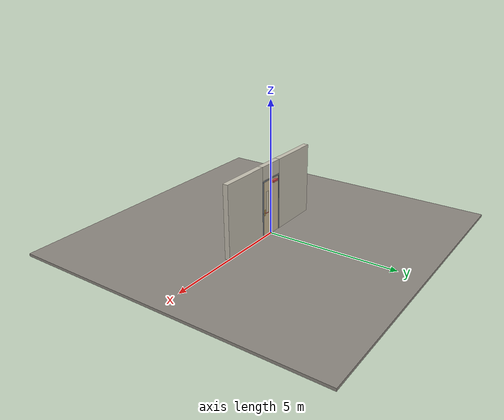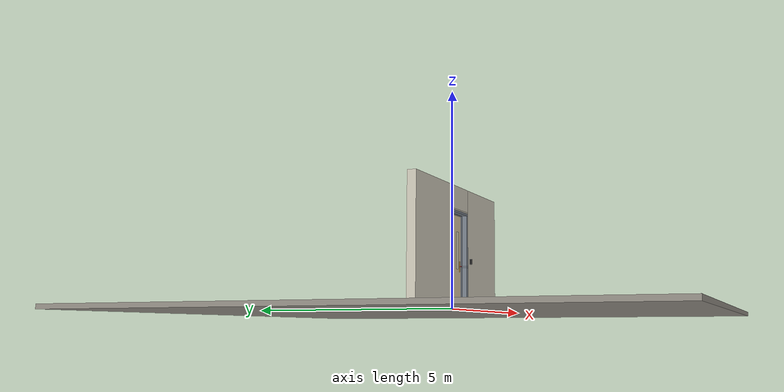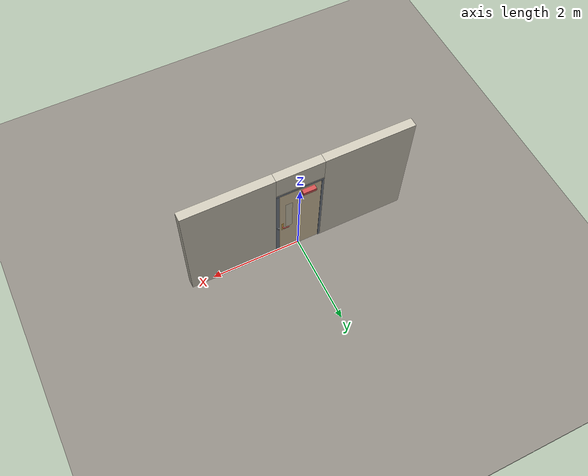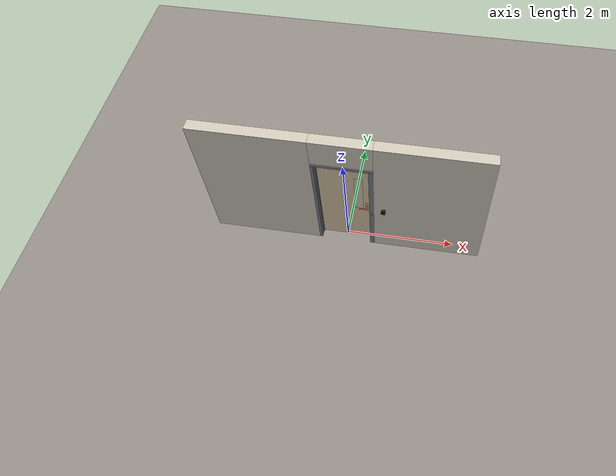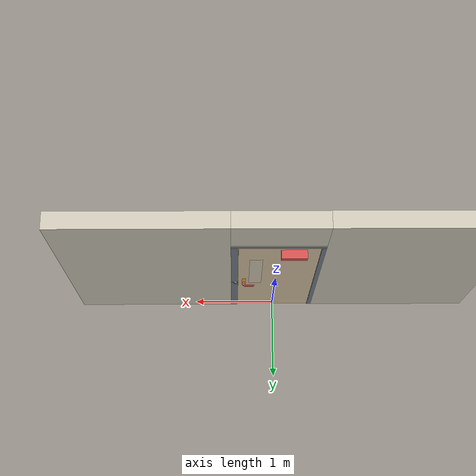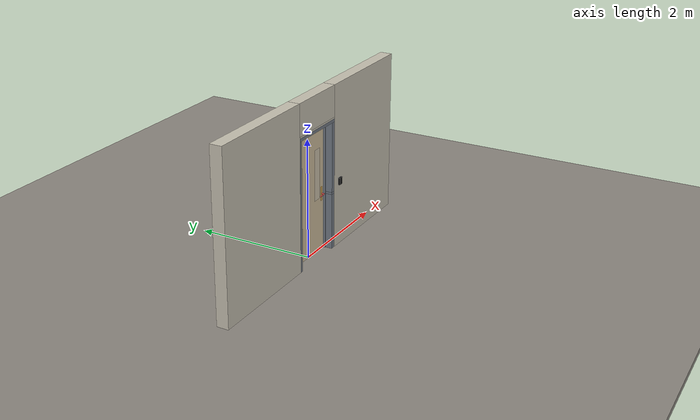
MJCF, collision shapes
<?xml version="1.0" ?>
<mujoco model="db0904_swing_single_simple">
  <compiler angle="radian" meshdir="../../hardware" texturedir="../../textures" autolimits="true" inertiafromgeom="false"/>
  <option timestep="0.002" integrator="implicitfast" cone="elliptic" impratio="10" noslip_iterations="3">
    <flag multiccd="enable"/>
  </option>
  <size memory="16M"/>
  <default>
    <geom condim="4" solref="0.005 1" solimp="0.95 0.99 0.001"/>
    <joint solreflimit="0.005 1" solimplimit="0.95 0.99 0.001"/>
    <tendon solreflimit="0.005 1"/>
    <equality solref="0.002 1"/>
  </default>
  <visual>
    <headlight ambient="0.4 0.4 0.4" diffuse="0.7 0.7 0.7" specular="0.2 0.2 0.2"/>
    <quality shadowsize="4096"/>
    <map znear="0.01" zfar="60"/>
  </visual>
  <asset>
    <mesh name="closer_body_fdc4667657" file="closer_body_fdc4667657.obj"/>
    <mesh name="hinge_e22b26c0c1" file="hinge_e22b26c0c1.obj"/>
    <mesh name="hinge_jamb_e1d088f8dc" file="hinge_jamb_e1d088f8dc.obj"/>
    <mesh name="lever_6fbb1e9593" file="lever_6fbb1e9593.obj"/>
    <material name="mat_floor" rgba="0.55 0.53 0.5 1" specular="0.2" shininess="0.15" reflectance="0"/>
    <material name="mat_wall" rgba="0.78 0.76 0.7 1" specular="0.2" shininess="0.1" reflectance="0"/>
    <material name="mat_leaf" rgba="0.82 0.75 0.62 1" specular="0.2" shininess="0.5" reflectance="0"/>
    <material name="mat_glass" rgba="0.85 0.92 0.95 0.25" specular="0.2" shininess="0.95" reflectance="0.1"/>
    <material name="mat_hinge" rgba="0.65 0.66 0.68 1" specular="0.74" shininess="0.5" reflectance="0.36"/>
    <material name="mat_op_brass" rgba="0.85 0.66 0.3 1" specular="0.8" shininess="0.75" reflectance="0.4"/>
    <material name="mat_trim" rgba="0.85 0.66 0.3 1" specular="0.8" shininess="0.75" reflectance="0.4"/>
    <material name="mat_bolt" rgba="0.85 0.66 0.3 1" specular="0.8" shininess="0.75" reflectance="0.4"/>
    <material name="mat_frame" rgba="0.45 0.48 0.52 1" specular="0.32" shininess="0.6" reflectance="0.08"/>
    <material name="mat_seal" rgba="0.1 0.1 0.1 1" specular="0.2" shininess="0.1" reflectance="0"/>
    <material name="mat_closer" rgba="0.22 0.17 0.13 1" specular="0.8" shininess="0.6" reflectance="0.4"/>
    <material name="mat_hook" rgba="0.9 0.9 0.92 1" specular="0.8" shininess="0.9" reflectance="0.4"/>
    <material name="mat_sign" rgba="0.75 0.76 0.77 1" specular="0.8" shininess="0.65" reflectance="0.4"/>
    <material name="mat_wallreader" rgba="0.05 0.05 0.05 1" specular="0.38" shininess="0.3" reflectance="0.12"/>
    <texture name="skybox" type="skybox" builtin="gradient" rgb1="0.6 0.7 0.85" rgb2="0.9 0.92 0.95" width="256" height="256"/>
  </asset>
  <worldbody>
    <light name="sun" pos="1.5 -2.5 4" dir="-0.3 0.5 -0.8" directional="true" diffuse="0.8 0.8 0.8" specular="0.3 0.3 0.3" castshadow="true"/>
    <light name="fill" pos="-1.5 2.5 3" dir="0.3 -0.5 -0.7" directional="true" diffuse="0.35 0.35 0.4" castshadow="false"/>
    <camera name="robot_view" pos="0 -2.708813 1.812087" xyaxes="1 0 0 0 0.26963 0.962964" fovy="52"/>
    <camera name="far_view" pos="0 2.566812 1.812087" xyaxes="-1 0 0 0 -0.26963 0.962964" fovy="52"/>
    <camera name="iso" pos="2.004737 -2.286763 2.234138" xyaxes="0.741536 0.670913 0 -0.242917 0.268487 0.932151" fovy="46"/>
    <camera name="detail_handle" pos="0.4625 -0.877 1.245" xyaxes="0.97561 0.219512 0 -0.070934 0.315262 0.94635" fovy="38"/>
    <geom name="floor" type="box" size="6 6 0.05" pos="0 0 -0.05" material="mat_floor" group="0" contype="1" conaffinity="1" friction="0.8 0.005 0.0001" density="2400"/>
    <geom name="wall_left" type="box" size="0.99475 0.1 1.3735" pos="-1.50525 -0.071 1.3735" material="mat_wall" group="0" contype="1" conaffinity="1" friction="0.6 0.005 0.0001" density="800"/>
    <geom name="wall_right" type="box" size="0.97975 0.1 1.3735" pos="1.52025 -0.071 1.3735" material="mat_wall" group="0" contype="1" conaffinity="1" friction="0.6 0.005 0.0001" density="800"/>
    <geom name="wall_header" type="box" size="0.5255 0.1 0.26" pos="0.015 -0.071 2.487" material="mat_wall" group="0" contype="1" conaffinity="1" friction="0.6 0.005 0.0001" density="800"/>
    <geom name="hinge_0_jamb" type="mesh" mesh="hinge_jamb_e1d088f8dc" pos="-0.4575 0.029 0.259" quat="0 1 0 0" material="mat_hinge" group="1" contype="0" conaffinity="0" density="7850"/>
    <geom name="hinge_1_jamb" type="mesh" mesh="hinge_jamb_e1d088f8dc" pos="-0.4575 0.029 1.076" quat="0 1 0 0" material="mat_hinge" group="1" contype="0" conaffinity="0" density="7850"/>
    <geom name="hinge_2_jamb" type="mesh" mesh="hinge_jamb_e1d088f8dc" pos="-0.4575 0.029 1.963" quat="0 1 0 0" material="mat_hinge" group="1" contype="0" conaffinity="0" density="7850"/>
    <geom name="jamb_hinge" type="box" size="0.025 0.1 1.0735" pos="-0.4855 -0.071 1.0735" material="mat_frame" group="0" contype="1" conaffinity="1" friction="0.6 0.005 0.0001" density="300"/>
    <geom name="strike_965_wall_n" type="box" size="0.04 0.08075 0.0183" pos="0.5005 -0.09025 0.965" material="mat_frame" group="0" contype="1" conaffinity="1" friction="0.6 0.005 0.0001" density="300"/>
    <geom name="strike_965_wall_p" type="box" size="0.04 0.008 0.0183" pos="0.5005 0.0175 0.965" material="mat_frame" group="0" contype="1" conaffinity="1" friction="0.6 0.005 0.0001" density="300"/>
    <geom name="strike_965_ramp" type="box" size="0.04 0.018028 0.0183" pos="0.503782 0.018312 0.965" quat="0.957092 0 0 -0.289784" material="mat_frame" group="0" contype="1" conaffinity="1" friction="0.12 0.005 0.0001" density="300"/>
    <geom name="strike_965_back" type="box" size="0.0285 0.0095 0.0183" pos="0.512 0 0.965" material="mat_frame" group="0" contype="1" conaffinity="1" friction="0.6 0.005 0.0001" density="300"/>
    <geom name="jamb_strike_0" type="box" size="0.04 0.1 0.47335" pos="0.5005 -0.071 0.47335" material="mat_frame" group="0" contype="1" conaffinity="1" friction="0.6 0.005 0.0001" density="300"/>
    <geom name="jamb_strike_1" type="box" size="0.04 0.1 0.58185" pos="0.5005 -0.071 1.56515" material="mat_frame" group="0" contype="1" conaffinity="1" friction="0.6 0.005 0.0001" density="300"/>
    <geom name="jamb_head" type="box" size="0.5255 0.1 0.025" pos="0.015 -0.071 2.172" material="mat_frame" group="0" contype="1" conaffinity="1" friction="0.6 0.005 0.0001" density="300"/>
    <geom name="head_stud" type="box" size="0.5255 0.1 0.015" pos="0.015 -0.071 2.212" material="mat_wall" group="0" contype="1" conaffinity="1" friction="0.6 0.005 0.0001" density="500"/>
    <geom name="stop_hinge" type="box" size="0.0055 0.016 1.0735" pos="-0.455 -0.0385 1.0735" material="mat_frame" group="0" contype="1" conaffinity="1" friction="0.6 0.005 0.0001" density="300"/>
    <geom name="stop_strike" type="box" size="0.0055 0.016 1.0735" pos="0.455 -0.0385 1.0735" material="mat_frame" group="0" contype="1" conaffinity="1" friction="0.6 0.005 0.0001" density="300"/>
    <geom name="stop_head" type="box" size="0.4605 0.016 0.0055" pos="0 -0.0385 2.1415" material="mat_frame" group="0" contype="1" conaffinity="1" friction="0.6 0.005 0.0001" density="300"/>
    <geom name="seal_hinge" type="box" size="0.004 0.004 1.0735" pos="-0.4575 -0.026 1.0735" material="mat_seal" group="1" contype="0" conaffinity="0" density="1100"/>
    <geom name="seal_strike" type="box" size="0.004 0.004 1.0735" pos="0.4575 -0.026 1.0735" material="mat_seal" group="1" contype="0" conaffinity="0" density="1100"/>
    <geom name="seal_head" type="box" size="0.4405 0.004 0.008" pos="0 -0.026 2.135" material="mat_seal" group="1" contype="0" conaffinity="0" density="1100"/>
    <geom name="wall_reader" type="box" size="0.04 0.015 0.06" pos="0.7105 -0.186 1.1" material="mat_wallreader" group="0" contype="1" conaffinity="1" friction="0.6 0.005 0.0001" density="1000"/>
    <site name="approach_point" pos="0 -1.5 0" quat="1 0 0 0" size="0.05" rgba="0.2 0.9 0.2 0.5" group="4"/>
    <site name="goal_point" pos="0 1.5 0" quat="1 0 0 0" size="0.05" rgba="0.2 0.9 0.2 0.5" group="4"/>
    <site name="door_plane_center" pos="0 0 1.0735" quat="1 0 0 0" size="0.02" rgba="0.2 0.9 0.2 0.5" group="4"/>
    <body name="leaf" pos="-0.4605 0 0">
      <inertial pos="0.422037 0.015649 1.285914" mass="61.341632" quat="-0.471852 0.494959 0.517015 0.514846" diaginertia="3.751715183 28.353455745 32.001477363"/>
      <joint name="leaf_hinge" type="hinge" axis="0 0 1" pos="0.003 0.029 0" limited="true" range="0 1.745329" solreflimit="0.02 1" damping="12.268966" frictionloss="1.680703" stiffness="14.845973" springref="-1.978988" armature="0.02"/>
      <geom name="leaf_slab" type="box" size="0.457 0.022 1.067" pos="0.46 0 1.076" material="mat_leaf" group="0" contype="1" conaffinity="1" friction="0.4 0.005 0.0001" density="1"/>
      <geom name="leaf_glass_0" type="box" size="0.075 0.0228 0.4268" pos="0.71146 0 1.33208" material="mat_glass" group="1" contype="0" conaffinity="0" density="1"/>
      <geom name="hinge_0" type="mesh" mesh="hinge_e22b26c0c1" pos="0.003 0.029 0.259" quat="0 1 0 0" material="mat_hinge" group="1" contype="0" conaffinity="0" density="7850"/>
      <geom name="hinge_1" type="mesh" mesh="hinge_e22b26c0c1" pos="0.003 0.029 1.076" quat="0 1 0 0" material="mat_hinge" group="1" contype="0" conaffinity="0" density="7850"/>
      <geom name="hinge_2" type="mesh" mesh="hinge_e22b26c0c1" pos="0.003 0.029 1.963" quat="0 1 0 0" material="mat_hinge" group="1" contype="0" conaffinity="0" density="7850"/>
      <geom name="leaf_handle_escutcheon_n" type="box" size="0.0225 0.0015 0.12" pos="0.847 -0.0235 0.965" material="mat_op_brass" group="1" contype="0" conaffinity="0" density="3000"/>
      <geom name="leaf_handle_escutcheon_p" type="box" size="0.0225 0.0015 0.12" pos="0.847 0.0235 0.965" material="mat_op_brass" group="1" contype="0" conaffinity="0" density="3000"/>
      <geom name="leaf_latch_bolt_faceplate" type="box" size="0.0006 0.014 0.0283" pos="0.9164 0 0.965" material="mat_bolt" group="1" contype="0" conaffinity="0" density="8500"/>
      <geom name="closer_body" type="mesh" mesh="closer_body_fdc4667657" pos="0.3 0.022 2.054" quat="-0.707107 0.707107 0 0" material="mat_closer" group="1" contype="0" conaffinity="0" density="2000"/>
      <geom name="closer_body_col" type="box" size="0.145 0.05 0.035" pos="0.3 0.072 2.054" material="mat_closer" group="3" contype="1" conaffinity="1" rgba="0.8 0.3 0.3 0.25" friction="0.6 0.005 0.0001" density="2000"/>
      <site name="leaf_edge_mid" pos="0.917 0 1.067" quat="1 0 0 0" size="0.02" rgba="0.2 0.9 0.2 0.5" group="4"/>
      <body name="leaf_handle" pos="0.847 0 0.965">
        <inertial pos="-0.043135 0 0" mass="0.776327" quat="0 0.707107 0.707107 0" diaginertia="0.001583515 0.003788801 0.005327262"/>
        <joint name="leaf_handle_hinge" type="hinge" axis="0 -1 0" limited="true" range="0 0.7" damping="0.270116" frictionloss="0.064" stiffness="1.4" springref="-0.428571" armature="0.01"/>
        <geom name="leaf_handle_lever_n" type="mesh" mesh="lever_6fbb1e9593" pos="0 -0.022 0" quat="0.707107 0.707107 0 0" material="mat_op_brass" group="1" contype="0" conaffinity="0" density="3000"/>
        <geom name="leaf_handle_lever_col_n" type="capsule" size="0.01 0.055" pos="-0.065 -0.077 0" quat="0.707107 0 -0.707107 0" material="mat_op_brass" group="3" contype="1" conaffinity="1" rgba="0.8 0.3 0.3 0.25" friction="0.7 0.01 0.0001" density="3000"/>
        <geom name="leaf_handle_hub_col_n" type="cylinder" size="0.012 0.022" pos="0 -0.052 0" quat="0.707107 -0.707107 0 0" material="mat_op_brass" group="3" contype="1" conaffinity="1" rgba="0.8 0.3 0.3 0.25" friction="0.6 0.005 0.0001" density="3000"/>
        <geom name="leaf_handle_lever_p" type="mesh" mesh="lever_6fbb1e9593" pos="0 0.022 0" quat="-0.707107 0.707107 0 0" material="mat_op_brass" group="1" contype="0" conaffinity="0" density="3000"/>
        <geom name="leaf_handle_lever_col_p" type="capsule" size="0.01 0.055" pos="-0.065 0.077 0" quat="0.707107 0 -0.707107 0" material="mat_op_brass" group="3" contype="1" conaffinity="1" rgba="0.8 0.3 0.3 0.25" friction="0.7 0.01 0.0001" density="3000"/>
        <geom name="leaf_handle_hub_col_p" type="cylinder" size="0.012 0.022" pos="0 0.052 0" quat="0.707107 -0.707107 0 0" material="mat_op_brass" group="3" contype="1" conaffinity="1" rgba="0.8 0.3 0.3 0.25" friction="0.6 0.005 0.0001" density="3000"/>
        <site name="leaf_handle_grip_n" pos="-0.104 -0.077 0" quat="1 0 0 0" size="0.012" rgba="0.2 0.9 0.2 0.5" group="4"/>
        <site name="leaf_handle_grip_p" pos="-0.104 0.077 0" quat="1 0 0 0" size="0.012" rgba="0.2 0.9 0.2 0.5" group="4"/>
      </body>
      <body name="leaf_latch_bolt" pos="0.917 0 0.965">
        <inertial pos="-0.0055 0 0" mass="0.074627" quat="0.92388 -0.382683 0 0" diaginertia="0.000002271 0.000013255 0.000013255"/>
        <joint name="leaf_latch_bolt_slide" type="slide" axis="-1 0 0" limited="true" range="0 0.019" damping="2" frictionloss="0.3" stiffness="600" springref="-0.01" armature="0.1"/>
        <geom name="leaf_latch_bolt_capsule" type="capsule" size="0.008 0.0165" pos="-0.0055 0 0" quat="0.707107 0 0.707107 0" material="mat_bolt" group="0" contype="1" conaffinity="1" friction="0.2 0.005 0.0001" density="8500"/>
      </body>
    </body>
  </worldbody>
  <tendon>
    <fixed name="leaf_latch_bolt_coupling" limited="true" range="0 10">
      <joint joint="leaf_latch_bolt_slide" coef="1"/>
      <joint joint="leaf_handle_hinge" coef="-0.028788"/>
    </fixed>
  </tendon>
  <sensor>
    <jointpos name="leaf_hinge_pos" joint="leaf_hinge"/>
    <jointvel name="leaf_hinge_vel" joint="leaf_hinge"/>
    <jointpos name="leaf_handle_hinge_pos" joint="leaf_handle_hinge"/>
    <jointvel name="leaf_handle_hinge_vel" joint="leaf_handle_hinge"/>
    <jointpos name="leaf_latch_bolt_slide_pos" joint="leaf_latch_bolt_slide"/>
    <jointvel name="leaf_latch_bolt_slide_vel" joint="leaf_latch_bolt_slide"/>
  </sensor>
</mujoco>
